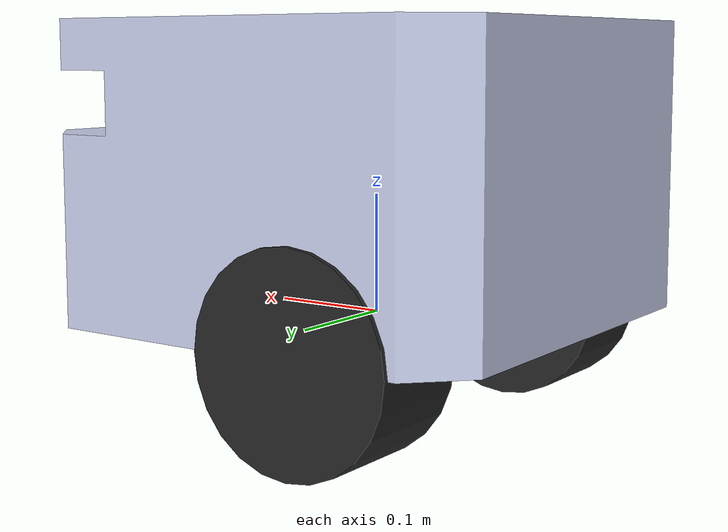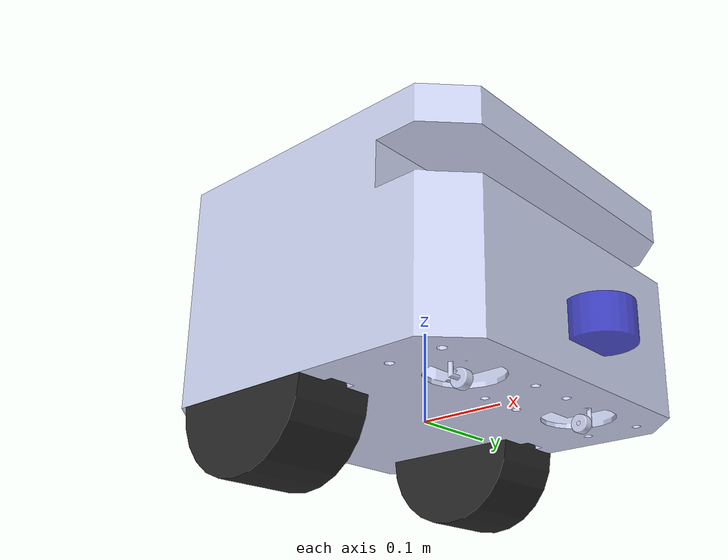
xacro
<?xml version="1.0"?>
<robot xmlns:xacro="http://www.ros.org/wiki/xacro" name="ivastbot">
    <xacro:include filename="$(find bringup)/urdf/robot_description.urdf.xacro" />

    <!-- Instantiate robot -->
    <xacro:robot prefix="" />

    <!-- Base Footprint (ground plane reference) -->
    <link name="base_footprint" />
    <joint name="base_joint" type="fixed">
        <parent link="base_link" />
        <child link="base_footprint" />
        <origin xyz="0 0 -0.085" rpy="0 0 0"/>
    </joint>

    <!-- Laser Frame (RPLidar A2M8 mount position) -->
    <link name="laser_frame">
      <inertial>
        <origin xyz="0 0 0" rpy="0 0 0"/>
        <mass value="0.2"/>
        <inertia ixx="0.0001" ixy="0" ixz="0" iyy="0.0001" iyz="0" izz="0.0001"/>
      </inertial>
      <visual>
        <origin xyz="0 0 0" rpy="0 0 0"/>
        <geometry>
          <cylinder radius="0.035" length="0.04"/>
        </geometry>
        <material name="lidar_blue">
          <color rgba="0.2 0.2 0.8 0.8"/>
        </material>
      </visual>
    </link>

    <joint name="lidar_joint" type="fixed">
        <parent link="base_link"/>
        <child link="laser_frame"/>
        <origin xyz="0.22 0 0.055" rpy="0 0 0"/>
    </joint>

    <!-- IMU Link -->
    <link name="imu_link" />
    <joint name="imu_joint" type="fixed">
        <parent link="base_link"/>
        <child link="imu_link"/>
        <origin xyz="0 0 0.067" rpy="0 0 0"/>
    </joint>

    <!-- ros2_control: IDS830 servo hardware interface -->
    <xacro:include filename="$(find bringup)/urdf/ids830.ros2_control.xacro" />
    <xacro:ids830_ros2_control
        name="ids830_drivetrain" prefix=""
        can_channel="/dev/ttyACM0" left_id="4" right_id="2" />

</robot>

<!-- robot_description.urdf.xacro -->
<robot xmlns:xacro="http://www.ros.org/wiki/xacro">
  <xacro:macro name="robot" params="prefix">

    <!-- ==================== BASE LINK ==================== -->
    <link name="${prefix}base_link">
      <inertial>
        <origin xyz="0.015202 0.00038101 0.067301" rpy="0 0 0" />
        <mass value="1.5687" />
        <inertia
          ixx="0.023552" ixy="-1.0222E-05" ixz="-0.00013115"
          iyy="0.024257" iyz="-6.8044E-11" izz="0.040898" />
      </inertial>
      <visual>
        <origin xyz="0 0 0" rpy="0 0 0" />
        <geometry>
          <mesh filename="package://bringup/meshes/base_link.STL" />
        </geometry>
        <material name="">
          <color rgba="0.79216 0.81961 0.93333 1" />
        </material>
      </visual>
      <collision>
        <origin xyz="0 0 0" rpy="0 0 0" />
        <geometry>
          <mesh filename="package://bringup/meshes/base_link.STL" />
        </geometry>
      </collision>
    </link>

    <!-- ==================== LEFT DRIVE WHEEL (bánh to trái) ==================== -->
    <link name="${prefix}left_wheel_link">
      <inertial>
        <origin xyz="1.914E-05 0.044901 1.941E-05" rpy="0 0 0" />
        <mass value="0.78153" />
        <inertia
          ixx="0.0019731" ixy="2.236E-07" ixz="-9.212E-07"
          iyy="0.0038637" iyz="2.268E-07" izz="0.0019731" />
      </inertial>
      <!-- Cylinder centered at CoM (45 mm outward from joint in +Y), axis along Y -->
      <visual>
        <origin xyz="0 0.045 0" rpy="1.5707963 0 0" />
        <geometry>
          <cylinder radius="0.085" length="0.090" />
        </geometry>
        <material name="wheel_dark">
          <color rgba="0.15 0.15 0.15 1" />
        </material>
      </visual>
      <collision>
        <origin xyz="0 0.045 0" rpy="1.5707963 0 0" />
        <geometry>
          <cylinder radius="0.085" length="0.090" />
        </geometry>
      </collision>
    </link>
    <joint name="${prefix}left_wheel_joint" type="continuous">
      <origin xyz="-0.062846 0.11438 0.0" rpy="0 0 0" />
      <parent link="${prefix}base_link" />
      <child link="${prefix}left_wheel_link" />
      <axis xyz="0 -1 0" />
      <limit effort="10" velocity="10" />
      <dynamics damping="0.1" friction="0.1" />
    </joint>

    <!-- ==================== RIGHT DRIVE WHEEL (bánh to phải) ==================== -->
    <link name="${prefix}right_wheel_link">
      <inertial>
        <origin xyz="7.622E-07 -0.044911 -2.725E-05" rpy="0 0 0" />
        <mass value="0.78153" />
        <inertia
          ixx="0.0019740" ixy="8.905E-09" ixz="5.150E-08"
          iyy="0.0038637" iyz="-3.183E-07" izz="0.0019721" />
      </inertial>
      <!-- Cylinder centered at CoM (45 mm outward from joint in -Y), axis along Y -->
      <visual>
        <origin xyz="0 -0.045 0" rpy="1.5707963 0 0" />
        <geometry>
          <cylinder radius="0.085" length="0.090" />
        </geometry>
        <material name="wheel_dark">
          <color rgba="0.15 0.15 0.15 1" />
        </material>
      </visual>
      <collision>
        <origin xyz="0 -0.045 0" rpy="1.5707963 0 0" />
        <geometry>
          <cylinder radius="0.085" length="0.090" />
        </geometry>
      </collision>
    </link>
    <joint name="${prefix}right_wheel_joint" type="continuous">
      <origin xyz="-0.062846 -0.10889 0.0" rpy="0 0 0" />
      <parent link="${prefix}base_link" />
      <child link="${prefix}right_wheel_link" />
      <axis xyz="0 -1 0" />
      <limit effort="10" velocity="10" />
      <dynamics damping="0.1" friction="0.1" />
    </joint>

    <!-- ==================== LEFT CASTER (bánh nhỏ trái - phía trước) ==================== -->
    <link name="${prefix}caster_left_link">
      <inertial>
        <origin xyz="0.000356 0.004998 7.895E-07" rpy="0 0 0" />
        <mass value="0.002924" />
        <inertia
          ixx="1.014E-07" ixy="4.087E-09" ixz="1.420E-11"
          iyy="1.539E-07" iyz="-1.456E-11" izz="1.013E-07" />
      </inertial>
      <visual>
        <origin xyz="0 0 0" rpy="0 0 0" />
        <geometry>
          <mesh filename="package://bringup/meshes/banhnhotrai_link.STL" />
        </geometry>
        <material name="">
          <color rgba="0.79216 0.81961 0.93333 1" />
        </material>
      </visual>
      <collision>
        <origin xyz="0 0 0" rpy="0 0 0" />
        <geometry>
          <mesh filename="package://bringup/meshes/banhnhotrai_link.STL" />
        </geometry>
      </collision>
    </link>
    <joint name="${prefix}caster_left_joint" type="fixed">
      <origin xyz="0.13102 0.095245 -0.005" rpy="0 0 0" />
      <parent link="${prefix}base_link" />
      <child link="${prefix}caster_left_link" />
    </joint>

    <!-- ==================== RIGHT CASTER (bánh nhỏ phải - phía trước) ==================== -->
    <link name="${prefix}caster_right_link">
      <inertial>
        <origin xyz="-0.000187 -0.005007 1.159E-05" rpy="0 0 0" />
        <mass value="0.002924" />
        <inertia
          ixx="1.014E-07" ixy="1.907E-09" ixz="5.522E-11"
          iyy="1.541E-07" iyz="1.959E-10" izz="1.011E-07" />
      </inertial>
      <visual>
        <origin xyz="0 0 0" rpy="0 0 0" />
        <geometry>
          <mesh filename="package://bringup/meshes/banhnhophai_link.STL" />
        </geometry>
        <material name="">
          <color rgba="0.79216 0.81961 0.93333 1" />
        </material>
      </visual>
      <collision>
        <origin xyz="0 0 0" rpy="0 0 0" />
        <geometry>
          <mesh filename="package://bringup/meshes/banhnhophai_link.STL" />
        </geometry>
      </collision>
    </link>
    <joint name="${prefix}caster_right_joint" type="fixed">
      <origin xyz="0.13102 -0.094755 -0.005" rpy="0 0 0" />
      <parent link="${prefix}base_link" />
      <child link="${prefix}caster_right_link" />
    </joint>

  </xacro:macro>
</robot>
